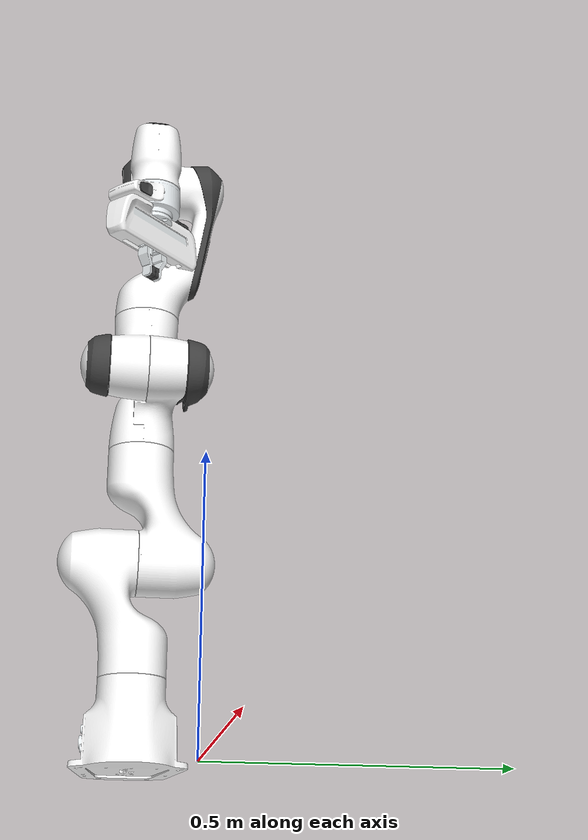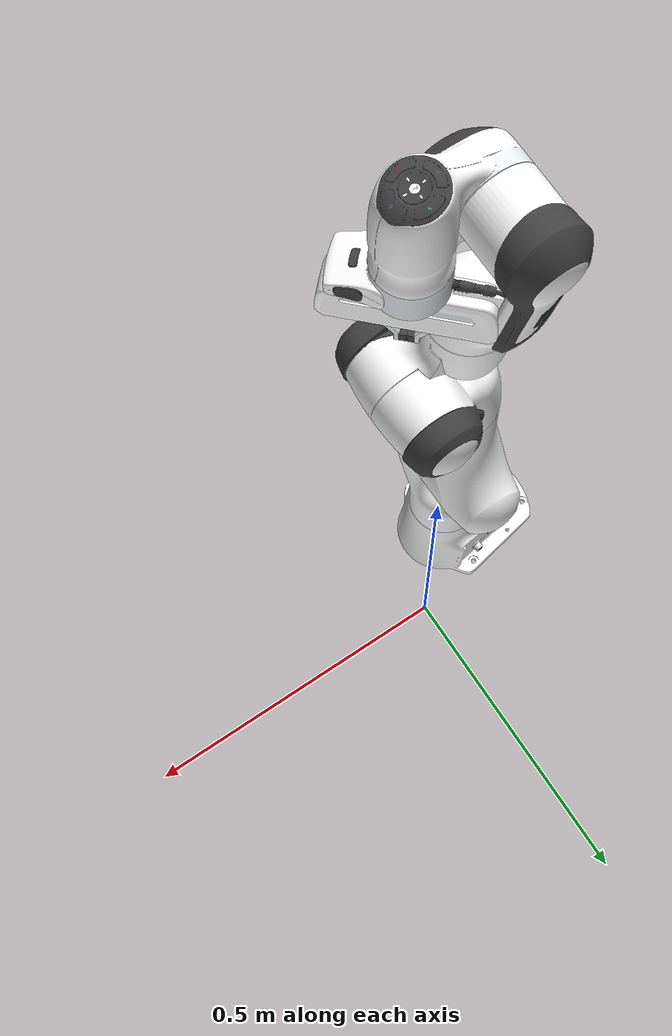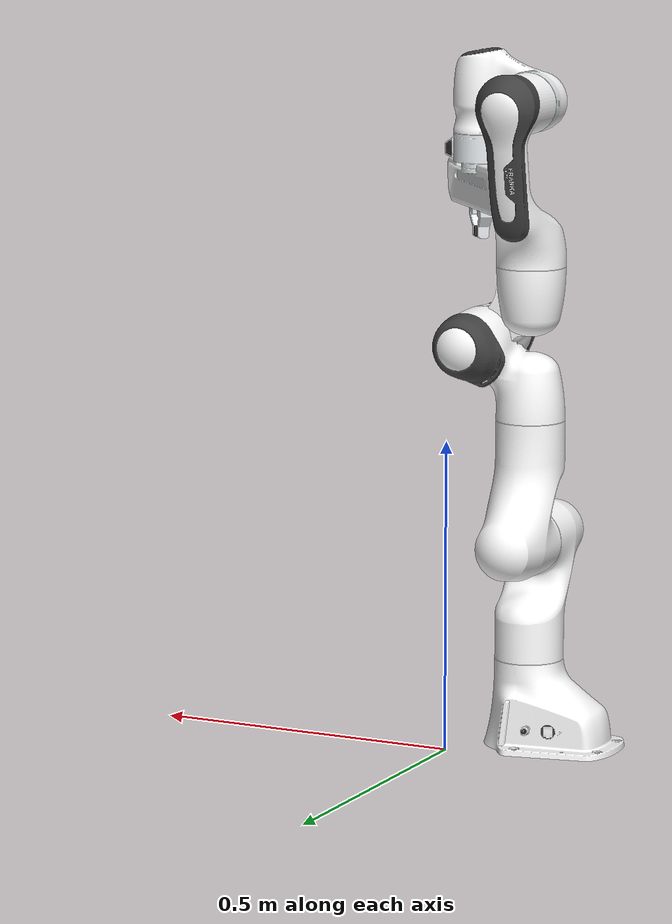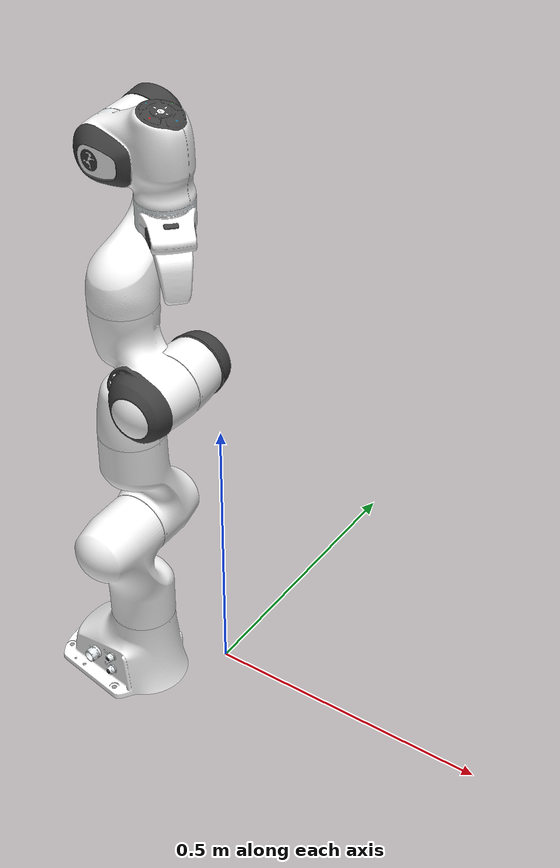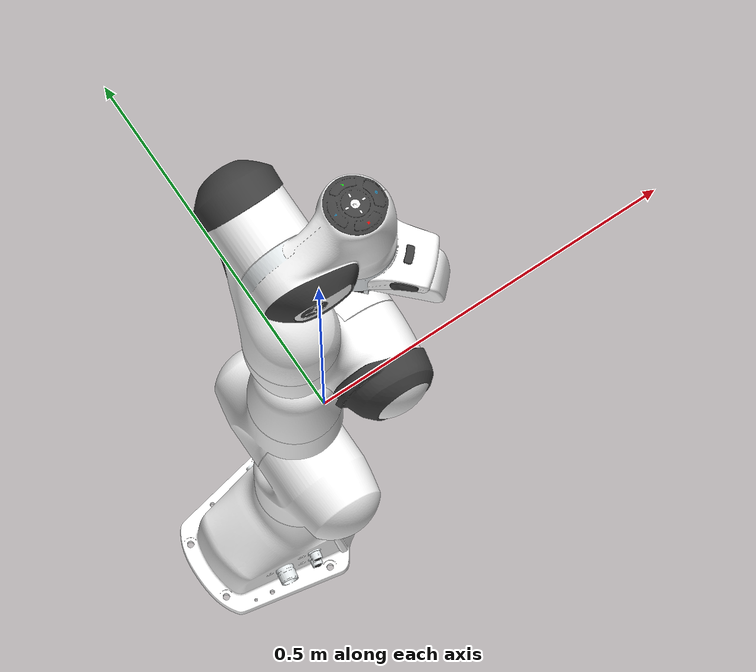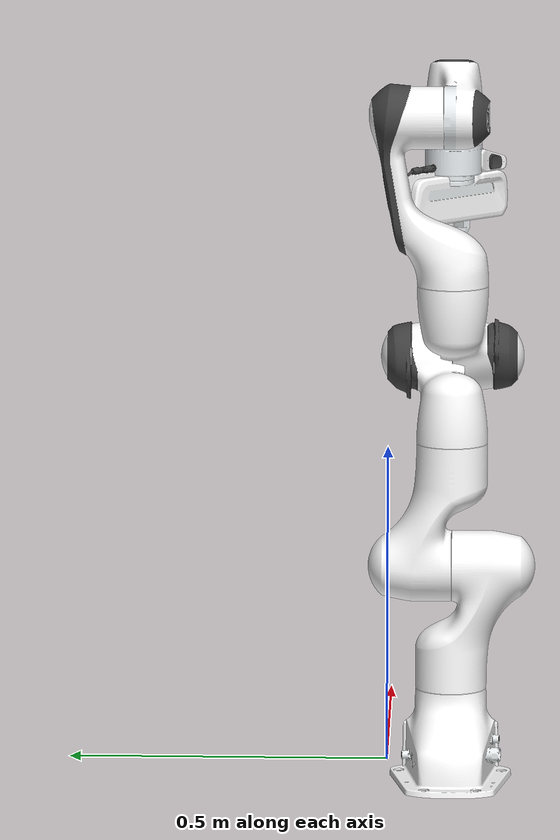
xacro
<?xml version="1.0"?>
<robot xmlns:xacro="http://www.ros.org/wiki/xacro" name="panda">
    <!-- To fix spawned model in Gazebo -->
    <link name="world"/>

    <joint name="fixed" type="fixed">
        <parent link="world"/>
        <child link="panda_link0"/>
        <origin xyz="-0.1 -0.1 0" rpy="0 0 0"/>
    </joint>

    <!-- Import panda urdf file -->
    <xacro:include filename="$(find panda_gz_moveit)/urdf/panda_mod.urdf.xacro" />

    <!-- Import panda ros2_control -->
    <xacro:include filename="$(find panda_gz_moveit)/urdf/panda_ros2_ctlr.urdf.xacro"/>

    <!-- Import gz_ros2_control -->
    <xacro:include filename="$(find panda_gz_moveit)/urdf/gz_ros2_control.urdf.xacro"/>

</robot>

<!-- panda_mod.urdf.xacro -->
<!-- |    This document was autogenerated by xacro from /opt/ros/kinetic/share/moveit_resources/panda_description/urdf/panda.urdf | -->
<!-- |    EDITING THIS FILE BY HAND IS NOT RECOMMENDED                                 | -->
<robot name="panda"
    xmlns:xacro="http://www.ros.org/wiki/xacro">
    <link name="panda_link0">
        <visual>
            <geometry>
                <mesh filename="file://$(find moveit_resources_panda_description)/meshes/visual/link0.dae" />
            </geometry>
        </visual>
        <collision>
            <geometry>
                <mesh filename="file://$(find moveit_resources_panda_description)/meshes/collision/link0.stl" />
            </geometry>
        </collision>
        <inertial>
            <origin xyz="-0.041018 -0.00014 0.049974" rpy="0 0 0" />
            <mass value="0.629769"/>
            <inertia ixx="0.00315" iyy="0.00388" izz="0.004285" ixy="8.2904E-7" ixz="0.00015" iyz="8.2299E-6"/>
        </inertial>
    </link>
    <link name="panda_link1">
        <visual>
            <geometry>
                <mesh filename="file://$(find moveit_resources_panda_description)/meshes/visual/link1.dae" />
            </geometry>
        </visual>
        <collision>
            <geometry>
                <mesh filename="file://$(find moveit_resources_panda_description)/meshes/collision/link1.stl" />
            </geometry>
        </collision>
        <inertial>
            <origin xyz="0.003875 0.002081 -0.04762" rpy="0 0 0" />
            <mass value="4.970684"/>
            <inertia ixx="0.70337" iyy="0.70661" izz="0.009117" ixy="-0.000139" ixz="0.006772" iyz="0.019169"/>
        </inertial>
    </link>
    <joint name="panda_joint1" type="revolute">
        <safety_controller k_position="100.0" k_velocity="40.0" soft_lower_limit="-2.8973" soft_upper_limit="2.8973" />
        <origin rpy="0 0 0" xyz="0 0 0.333" />
        <parent link="panda_link0" />
        <child link="panda_link1" />
        <axis xyz="0 0 1" />
        <limit effort="87" lower="-2.9671" upper="2.9671" velocity="2.3925" />
        <dynamics D="1" K="7000" damping="0.003" friction="0.0" mu_coulomb="0" mu_viscous="16" />
    </joint>
    <link name="panda_link2">
        <visual>
            <geometry>
                <mesh filename="file://$(find moveit_resources_panda_description)/meshes/visual/link2.dae" />
            </geometry>
        </visual>
        <collision>
            <geometry>
                <mesh filename="file://$(find moveit_resources_panda_description)/meshes/collision/link2.stl" />
            </geometry>
        </collision>
        <inertial>
            <origin xyz="-0.003141 -0.02872  0.003495" rpy="0 0 0" />
            <mass value="0.646926"/>
            <inertia ixx="0.007962" iyy="2.811E-2" izz="2.5995E-2" ixy="-3.925E-3" ixz="1.0254E-2" iyz="7.04E-4"/>
        </inertial>
    </link>
    <joint name="panda_joint2" type="revolute">
        <safety_controller k_position="100.0" k_velocity="40.0" soft_lower_limit="-1.7628" soft_upper_limit="1.7628" />
        <origin rpy="-1.57079632679 0 0" xyz="0 0 0" />
        <parent link="panda_link1" />
        <child link="panda_link2" />
        <axis xyz="0 0 1" />
        <limit effort="87" lower="-1.8326" upper="1.8326" velocity="2.3925" />
        <dynamics D="1" K="7000" damping="0.003" friction="0.0" mu_coulomb="0" mu_viscous="16" />
    </joint>
    <link name="panda_link3">
        <visual>
            <geometry>
                <mesh filename="file://$(find moveit_resources_panda_description)/meshes/visual/link3.dae" />
            </geometry>
        </visual>
        <collision>
            <geometry>
                <mesh filename="file://$(find moveit_resources_panda_description)/meshes/collision/link3.stl" />
            </geometry>
        </collision>
        <inertial>
            <origin xyz="2.7518E-2 3.9252E-2 -6.6502E-2" rpy="0 0 0" />
            <mass value="3.228604"/>
            <inertia ixx="3.7242E-2" iyy="3.6155E-2" izz="1.083E-2" ixy="-4.761E-3" ixz="-1.1396E-2" iyz="-1.2805E-2"/>
        </inertial>
    </link>
    <joint name="panda_joint3" type="revolute">
        <safety_controller k_position="100.0" k_velocity="40.0" soft_lower_limit="-2.8973" soft_upper_limit="2.8973" />
        <origin rpy="1.57079632679 0 0" xyz="0 -0.316 0" />
        <parent link="panda_link2" />
        <child link="panda_link3" />
        <axis xyz="0 0 1" />
        <limit effort="87" lower="-2.9671" upper="2.9671" velocity="2.3925" />
        <dynamics D="1" K="7000" damping="0.003" friction="0.0" mu_coulomb="0" mu_viscous="16" />
    </joint>
    <link name="panda_link4">
        <visual>
            <geometry>
                <mesh filename="file://$(find moveit_resources_panda_description)/meshes/visual/link4.dae" />
            </geometry>
        </visual>
        <collision>
            <geometry>
                <mesh filename="file://$(find moveit_resources_panda_description)/meshes/collision/link4.stl" />
            </geometry>
        </collision>
        <inertial>
            <origin xyz="-5.317E-2 1.04419E-1 2.7454E-2" rpy="0 0 0" />
            <mass value="3.587895"/>
            <inertia ixx="2.5853E-2" iyy="1.9552E-2" izz="2.8323E-2" ixy="7.796E-3" ixz="-1.332E-3" iyz="8.641E-3"/>
        </inertial>
    </link>
    <joint name="panda_joint4" type="revolute">
        <safety_controller k_position="100.0" k_velocity="40.0" soft_lower_limit="-3.0718" soft_upper_limit="0.0175" />
        <origin rpy="1.57079632679 0 0" xyz="0.0825 0 0" />
        <parent link="panda_link3" />
        <child link="panda_link4" />
        <axis xyz="0 0 1" />
        <limit effort="87" lower="-3.1416" upper="0.0873" velocity="2.3925" />
        <dynamics D="1" K="7000" damping="0.003" friction="0.0" mu_coulomb="0" mu_viscous="16" />
    </joint>
    <link name="panda_link5">
        <visual>
            <geometry>
                <mesh filename="file://$(find moveit_resources_panda_description)/meshes/visual/link5.dae" />
            </geometry>
        </visual>
        <collision>
            <geometry>
                <mesh filename="file://$(find moveit_resources_panda_description)/meshes/collision/link5.stl" />
            </geometry>
        </collision>
        <inertial>
            <origin xyz="-1.1953E-2 4.1065E-2 -3.8437E-2" rpy="0 0 0" />
            <mass value="1.225946"/>
            <inertia ixx="3.5549E-2" iyy="2.9474E-2" izz="8.627E-3" ixy="-2.117E-3" ixz="-4.037E-3" iyz="2.29E-4"/>
        </inertial>
    </link>
    <joint name="panda_joint5" type="revolute">
        <safety_controller k_position="100.0" k_velocity="40.0" soft_lower_limit="-2.8973" soft_upper_limit="2.8973" />
        <origin rpy="-1.57079632679 0 0" xyz="-0.0825 0.384 0" />
        <parent link="panda_link4" />
        <child link="panda_link5" />
        <axis xyz="0 0 1" />
        <limit effort="12" lower="-2.9671" upper="2.9671" velocity="2.8710" />
        <dynamics D="1" K="7000" damping="0.003" friction="0.0" mu_coulomb="0" mu_viscous="16" />
    </joint>
    <link name="panda_link6">
        <visual>
            <geometry>
                <mesh filename="file://$(find moveit_resources_panda_description)/meshes/visual/link6.dae" />
            </geometry>
        </visual>
        <collision>
            <geometry>
                <mesh filename="file://$(find moveit_resources_panda_description)/meshes/collision/link6.stl" />
            </geometry>
        </collision>
        <inertial>
            <origin xyz="6.0149E-2 -1.4117E-2 -1.0517E-2" rpy="0 0 0" />
            <mass value="1.666555"/>
            <inertia ixx="1.964E-3" iyy="4.354E-3" izz="5.433E-3" ixy="1.09E-4" ixz="-1.158E-3" iyz="3.41E-4"/>
        </inertial>
    </link>
    <joint name="panda_joint6" type="revolute">
        <safety_controller k_position="100.0" k_velocity="40.0" soft_lower_limit="-0.0175" soft_upper_limit="3.7525" />
        <origin rpy="1.57079632679 0 0" xyz="0 0 0" />
        <parent link="panda_link5" />
        <child link="panda_link6" />
        <axis xyz="0 0 1" />
        <limit effort="12" lower="-0.0873" upper="3.8223" velocity="2.8710" />
        <dynamics D="1" K="7000" damping="0.003" friction="0.0" mu_coulomb="0" mu_viscous="16" />
    </joint>
    <link name="panda_link7">
        <visual>
            <geometry>
                <mesh filename="file://$(find moveit_resources_panda_description)/meshes/visual/link7.dae" />
            </geometry>
        </visual>
        <collision>
            <geometry>
                <mesh filename="file://$(find moveit_resources_panda_description)/meshes/collision/link7.stl" />
            </geometry>
        </collision>
        <inertial>
            <origin xyz="1.0517E-2 -4.252E-3 6.1597E-2" rpy="0 0 0" />
            <mass value="7.35522E-1"/>
            <inertia ixx="1.2516E-2" iyy="1.0027E-2" izz="4.815E-3" ixy="-4.28E-4" ixz="-1.19E-3" iyz="-7.41E-4"/>
        </inertial>
    </link>
    <joint name="panda_joint7" type="revolute">
        <safety_controller k_position="100.0" k_velocity="40.0" soft_lower_limit="-2.8973" soft_upper_limit="2.8973" />
        <origin rpy="1.57079632679 0 0" xyz="0.088 0 0" />
        <parent link="panda_link6" />
        <child link="panda_link7" />
        <axis xyz="0 0 1" />
        <limit effort="12" lower="-2.9671" upper="2.9671" velocity="2.8710" />
        <dynamics D="1" K="7000" damping="0.003" friction="0.0" mu_coulomb="0" mu_viscous="16" />
    </joint>
    <link name="panda_link8" />
    <joint name="panda_joint8" type="fixed">
        <origin rpy="0 0 0" xyz="0 0 0.107" />
        <parent link="panda_link7" />
        <child link="panda_link8" />
        <axis xyz="0 0 0" />
    </joint>
    <joint name="panda_hand_joint" type="fixed">
        <parent link="panda_link8" />
        <child link="panda_hand" />
        <origin rpy="0 0 -0.785398163397" xyz="0 0 0" />
    </joint>
    <link name="panda_hand">
        <visual>
            <geometry>
                <mesh filename="file://$(find moveit_resources_panda_description)/meshes/visual/hand.dae" />
            </geometry>
        </visual>
        <collision>
            <geometry>
                <mesh filename="file://$(find moveit_resources_panda_description)/meshes/collision/hand.stl" />
            </geometry>
        </collision>
        <inertial>
            <origin xyz="-0.01 0 0.03" rpy="0 0 0" />
            <mass value="0.73"/>
            <inertia ixx="0.001" iyy="0.0025" izz="0.0017" ixy="0" ixz="0" iyz="0"/>
        </inertial>
    </link>
    <link name="panda_leftfinger">
        <visual>
            <geometry>
                <mesh filename="file://$(find moveit_resources_panda_description)/meshes/visual/finger.dae" />
            </geometry>
        </visual>
        <collision>
            <geometry>
                <mesh filename="file://$(find moveit_resources_panda_description)/meshes/collision/finger.stl" />
            </geometry>
        </collision>
        <inertial>
            <origin xyz="0 0 0" rpy="0 0 0" />
            <mass value="0.015"/>
            <inertia ixx="2.375E-6" iyy="2.375E-6" izz="7.5E-7" ixy="0" ixz="0" iyz="0"/>
        </inertial>
    </link>
    <link name="panda_rightfinger">
        <visual>
            <origin rpy="0 0 3.14159265359" xyz="0 0 0" />
            <geometry>
                <mesh filename="file://$(find moveit_resources_panda_description)/meshes/visual/finger.dae" />
            </geometry>
        </visual>
        <collision>
            <origin rpy="0 0 3.14159265359" xyz="0 0 0" />
            <geometry>
                <mesh filename="file://$(find moveit_resources_panda_description)/meshes/collision/finger.stl" />
            </geometry>
        </collision>
        <inertial>
            <origin xyz="0 0 0" rpy="0 0 0" />
            <mass value="0.15"/>
            <inertia ixx="2.375E-6" iyy="2.375E-6" izz="7.5E-7" ixy="0" ixz="0" iyz="0"/>
        </inertial>
    </link>
    <joint name="panda_finger_joint1" type="prismatic">
        <parent link="panda_hand" />
        <child link="panda_leftfinger" />
        <origin rpy="0 0 0" xyz="0 0 0.0584" />
        <axis xyz="0 1 0" />
        <limit effort="20" lower="0.0" upper="0.04" velocity="0.2" />
        <dynamics damping="0.3" />
    </joint>
    <joint name="panda_finger_joint2" type="prismatic">
        <parent link="panda_hand" />
        <child link="panda_rightfinger" />
        <origin rpy="0 0 0" xyz="0 0 0.0584" />
        <axis xyz="0 -1 0" />
        <limit effort="20" lower="0.0" upper="0.04" velocity="0.2" />
        <dynamics damping="0.3" />
    </joint>
</robot>
